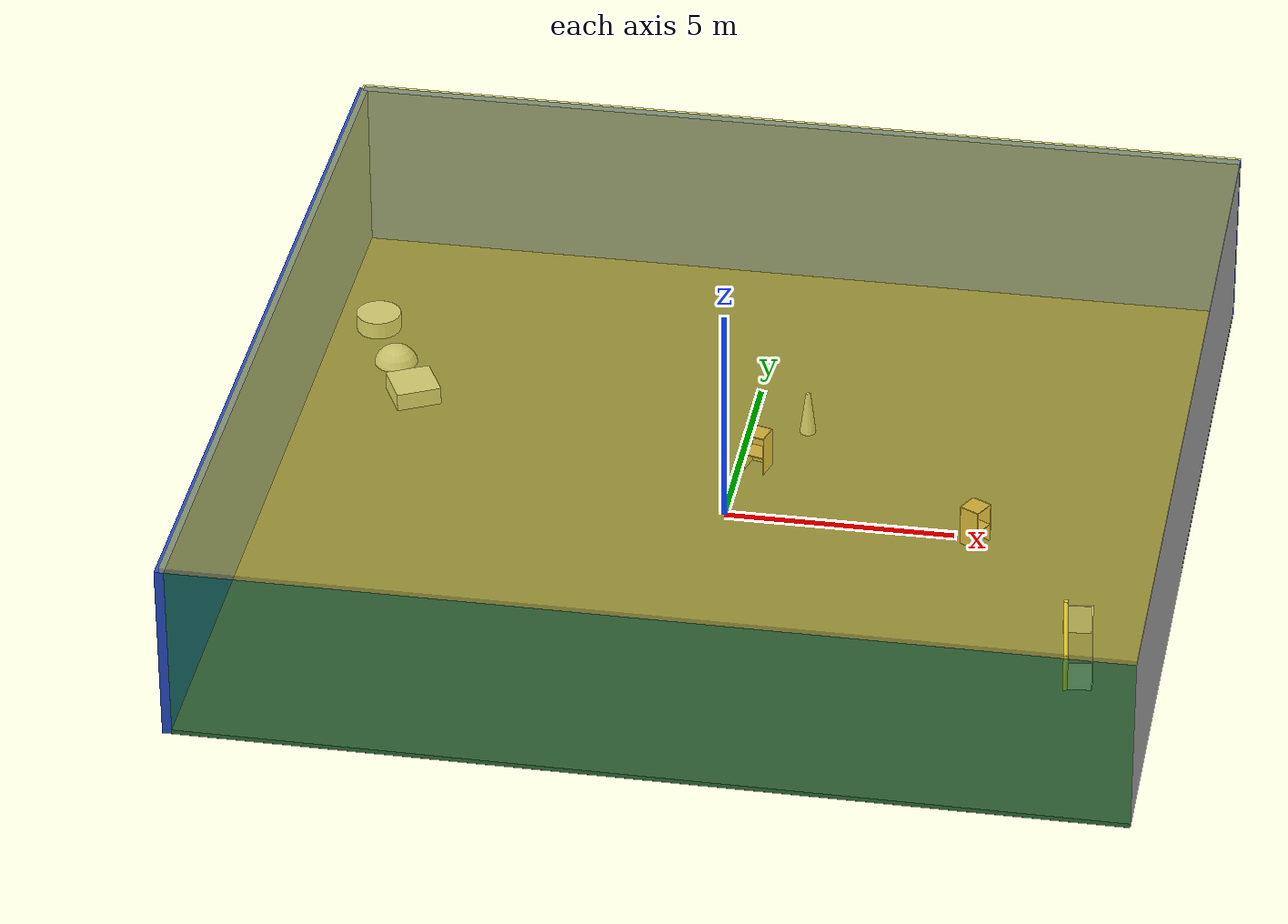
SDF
<sdf version="1.4">
 <world name="default">
  <physics type="ode">
   <max_step_size>0.001</max_step_size>
   <real_time_factor>1</real_time_factor>
   <real_time_update_rate>1000</real_time_update_rate>
   <gravity>0 0 -9.8</gravity>
  </physics>
  <scene><ambient>0.4 0.4 0.4 1</ambient><background>0.7 0.7 0.7 1</background><shadows>1</shadows></scene>
  <model name="Surrounding">
   <static>1</static>
   <link name="Ceiling">
    <collision name="Ceiling_Collision"><geometry><box><size>20 20 0.1</size></box></geometry></collision>
    <visual name="Ceiling_Visual">
     <geometry><box><size>20 20 0.1</size></box></geometry>
     <material>
      <script>
       <uri>file://media/materials/scripts/gazebo.material</uri>
       <name>Gazebo/YellowTransparent</name>
      </script>
     </material>
    </visual>
    <pose>0 0 4.05 0 0 0</pose>
   </link>
   <link name="Wall_South">
    <collision name="Wall_South_Collision">
     <geometry><box><size>20 0 4</size></box></geometry>
     <pose>0 0 2 0 -0 0</pose>
    </collision>
    <visual name="Wall_South_Visual">
     <pose>0 0 2 0 -0 0</pose>
     <geometry><box><size>20 0 4</size></box></geometry>
     <material>
      <script><uri>file://media/materials/scripts/gazebo.material</uri><name>Gazebo/GreenTransparent</name></script>
     </material>
    </visual>
    <velocity_decay><linear>0</linear><angular>0</angular></velocity_decay>
    <pose>0 -10 0 0 -0 0</pose>
   </link>
   <link name="Wall_East">
    <collision name="Wall_21_Collision">
     <geometry><box><size>20 0 4</size></box></geometry>
     <pose>0 0 2 0 -0 0</pose>
    </collision>
    <visual name="Wall_21_Visual">
     <pose>0 0 2 0 -0 0</pose>
     <geometry><box><size>20 0 4</size></box></geometry>
     <material>
      <script><uri>file://media/materials/scripts/gazebo.material</uri><name>Gazebo/CloudySky</name></script>
     </material>
    </visual>
    <velocity_decay><linear>0</linear><angular>0</angular></velocity_decay>
    <pose>10 0 0 0 -0 1.5708</pose>
   </link>
   <link name="Wall_North">
    <collision name="Wall_22_Collision">
     <geometry><box><size>20 0.2 4</size></box></geometry>
     <pose>0 0 2 0 -0 0</pose>
    </collision>
    <visual name="Wall_22_Visual">
     <pose>0 0 2 0 -0 0</pose>
     <geometry><box><size>20 0.2 4</size></box></geometry>
     <material>
      <script><uri>file://media/materials/scripts/gazebo.material</uri><name>Gazebo/Blue</name></script>
     </material>
    </visual>
    <velocity_decay><linear>0</linear><angular>0</angular></velocity_decay>
    <pose>0 10 0 0 -0 0</pose>
   </link>
   <link name="Wall_West">
    <collision name="Wall_23_Collision">
     <geometry><box><size>20 0.2 4</size></box></geometry>
     <pose>0 0 2 0 -0 0</pose>
    </collision>
    <visual name="Wall_23_Visual">
     <pose>0 0 2 0 -0 0</pose>
     <geometry><box><size>20 0.2 4</size></box></geometry>
     <material>
      <script><uri>file://media/materials/scripts/gazebo.material</uri><name>Gazebo/BlueLaser</name></script>
     </material>
    </visual>
    <velocity_decay><linear>0</linear><angular>0</angular></velocity_decay>
    <pose>-10 0 0 0 0 -1.5708</pose>
   </link>
   <link name="Ground_link">
    <collision name="collision">
     <pose>0 0 .05 0 -0 0</pose>
     <geometry><box><size>20 20 0.1</size></box></geometry>
    </collision>
    <visual name="visual">
     <pose>0 0 .05 0 -0 0</pose>
     <geometry><box><size>20 20 0.1</size></box></geometry>
     <material>
      <script><uri>file://media/materials/scripts/gazebo.material</uri><name>Gazebo/DarkGrey</name></script>
     </material>
    </visual>
   </link>
   <static>1</static>
  </model>
  <spherical_coordinates>
   <surface_model>EARTH_WGS84</surface_model>
   <latitude_deg>0</latitude_deg>
   <longitude_deg>0</longitude_deg>
   <elevation>0</elevation>
   <heading_deg>0</heading_deg>
  </spherical_coordinates>
  <light name="lightball_0" type="diffuse">
   <diffuse>0.8 0.8 0.8 1</diffuse>
   <specular>0.2 0.2 0.2 1</specular>
   <attenuation>
    <range>100</range>
    <constant>0.7</constant>
    <linear>0.01</linear>
    <quadratic>0.001</quadratic>
   </attenuation>
   <direction>-0.5 0.1 -0.9</direction>
   <pose>-6.51064426734 9.3761627326 1.30896414174 0 0 0</pose>
  </light>
  <light name="lightball_1" type="diffuse">
   <diffuse>0.8 0.8 0.8 1</diffuse>
   <specular>0.2 0.2 0.2 1</specular>
   <attenuation>
    <range>100</range>
    <constant>0.7</constant>
    <linear>0.01</linear>
    <quadratic>0.001</quadratic>
   </attenuation>
   <direction>-0.5 0.1 -0.9</direction>
   <pose>2.09924826335 -2.2232489941 1.76456132534 0 0 0</pose>
  </light>
  <light name="lightball_2" type="diffuse">
   <diffuse>0.8 0.8 0.8 1</diffuse>
   <specular>0.2 0.2 0.2 1</specular>
   <attenuation>
    <range>100</range>
    <constant>0.7</constant>
    <linear>0.01</linear>
    <quadratic>0.001</quadratic>
   </attenuation>
   <direction>-0.5 0.1 -0.9</direction>
   <pose>-7.28841832403 -0.826815533335 2.97032893786 0 0 0</pose>
  </light>
  <light name="lightball_3" type="diffuse">
   <diffuse>0.8 0.8 0.8 1</diffuse>
   <specular>0.2 0.2 0.2 1</specular>
   <attenuation>
    <range>100</range>
    <constant>0.7</constant>
    <linear>0.01</linear>
    <quadratic>0.001</quadratic>
   </attenuation>
   <direction>-0.5 0.1 -0.9</direction>
   <pose>7.41352092533 -6.94708466512 1.95609536042 0 0 0</pose>
  </light>
  <light name="lightball_4" type="diffuse">
   <diffuse>0.8 0.8 0.8 1</diffuse>
   <specular>0.2 0.2 0.2 1</specular>
   <attenuation>
    <range>100</range>
    <constant>0.7</constant>
    <linear>0.01</linear>
    <quadratic>0.001</quadratic>
   </attenuation>
   <direction>-0.5 0.1 -0.9</direction>
   <pose>-8.51131241645 -3.22946797812 1.5945311934 0 0 0</pose>
  </light>
  <light name="lightball_5" type="diffuse">
   <diffuse>0.8 0.8 0.8 1</diffuse>
   <specular>0.2 0.2 0.2 1</specular>
   <attenuation>
    <range>100</range>
    <constant>0.7</constant>
    <linear>0.01</linear>
    <quadratic>0.001</quadratic>
   </attenuation>
   <direction>-0.5 0.1 -0.9</direction>
   <pose>2.62668425773 8.2964421054 2.28328695214 0 0 0</pose>
  </light>
  <light name="lightball_6" type="diffuse">
   <diffuse>0.8 0.8 0.8 1</diffuse>
   <specular>0.2 0.2 0.2 1</specular>
   <attenuation>
    <range>100</range>
    <constant>0.7</constant>
    <linear>0.01</linear>
    <quadratic>0.001</quadratic>
   </attenuation>
   <direction>-0.5 0.1 -0.9</direction>
   <pose>-6.85969620407 -1.77655929607 3.36409005053 0 0 0</pose>
  </light>
  <include>
   <uri>model://textured_shapes</uri>
   <pose>-8.25573167317 4.76208407275 0 0 0 0.464612774692</pose>
  </include>
  <include><uri>model://cabinet</uri><pose>0.42616168302 1.80841545188 0 0 0 1.30730525894</pose></include>
  <include>
   <uri>model://construction_cone</uri>
   <pose>1.28031991086 3.41554435418 0 0 0 0.709374649211</pose>
  </include>
  <include><uri>model://cabinet</uri><pose>5.50263671541 -0.304172562253 0 0 0 2.64604903114</pose></include>
  <include>
   <uri>model://robocup_3Dsim_goal</uri>
   <pose>7.96996106119 -4.45377298041 0 0 0 0.119862616102</pose>
  </include>
 </world>
</sdf>

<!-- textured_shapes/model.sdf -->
<sdf version="1.6">
  <model name="textured_shapes">
    <pose>0 0 0.5 0 0 0</pose>
    <link name="box">
      <pose>0 -1.5 0 0 0 0</pose>
      <collision name="collision">
        <geometry>
          <box>
            <size>1 1 1</size>
          </box>
        </geometry>
      </collision>
      <visual name="visual">
        <geometry>
          <box>
            <size>1 1 1</size>
          </box>
        </geometry>
        <material>
          <script>
            <uri>model://../model_source/models/textured_shapes/materials/scripts</uri>
            <uri>model://../model_source/models/textured_shapes/materials/textures</uri>
            <name>TexturedShape/Squares</name>
          </script>
        </material>
      </visual>
    </link>
    <link name="sphere">
      <collision name="collision">
        <geometry>
          <sphere>
            <radius>0.5</radius>
          </sphere>
        </geometry>
      </collision>
      <visual name="visual">
        <geometry>
          <sphere>
            <radius>0.5</radius>
          </sphere>
        </geometry>
        <material>
          <script>
            <uri>model://../model_source/models/textured_shapes/materials/scripts</uri>
            <uri>model://../model_source/models/textured_shapes/materials/textures</uri>
            <name>TexturedShape/Squares</name>
          </script>
        </material>
      </visual>
    </link>
    <link name="cylinder">
      <pose>0 1.5 0 0 0 0</pose>
      <collision name="collision">
        <geometry>
          <cylinder>
            <radius>0.5</radius>
            <length>1</length>
          </cylinder>
        </geometry>
      </collision>
      <visual name="visual">
        <geometry>
          <cylinder>
            <radius>0.5</radius>
            <length>1</length>
          </cylinder>
        </geometry>
        <material>
          <script>
            <uri>model://../model_source/models/textured_shapes/materials/scripts</uri>
            <uri>model://../model_source/models/textured_shapes/materials/textures</uri>
            <name>TexturedShape/Squares</name>
          </script>
        </material>
      </visual>
    </link>
  </model>
</sdf>

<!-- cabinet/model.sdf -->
<sdf version="1.5">
  <model name="cabinet">
    <static>true</static>
    <link name="cabinet_bottom_plate">
      <inertial>
        <pose>0 0 -1 0 0 0</pose>
        <inertia>
          <ixx>2.050000</ixx>
          <ixy>0</ixy>
          <ixz>0</ixz>
          <iyy>2.050000</iyy>
          <iyz>0</iyz>
          <izz>2.050000</izz>
        </inertia>
        <mass>25.000000</mass>
      </inertial>
      <collision name="cabinet_bottom_plate_geom">
        <pose>0 0 0.010000 0 0 0</pose>
        <geometry>
          <box>
            <size>0.450000 0.450000 0.020000</size>
          </box>
        </geometry>
      </collision>
      <visual name="cabinet_bottom_plate_geom_visual">
        <pose>0 0 0.010000 0 0 0</pose>
        <geometry>
          <box>
            <size>0.450000 0.450000 0.020000</size>
          </box>
        </geometry>
        <material>
          <script>
            <uri>model://media/materials/scripts/gazebo.material</uri>
            <name>Gazebo/Wood</name>
          </script>
        </material>
      </visual>
      <collision name="cabinet_bottom_plate_geom_cabinet_back_plate">
        <pose>0.235000 0 0.510000 0 0 0</pose>
        <geometry>
          <box>
            <size>0.020000 0.450000 1.020000</size>
          </box>
        </geometry>
      </collision>
      <visual name="cabinet_bottom_plate_geom_cabinet_back_plate_visual">
        <pose>0.235000 0 0.510000 0 0 0</pose>
        <geometry>
          <box>
            <size>0.020000 0.450000 1.020000</size>
          </box>
        </geometry>
        <material>
          <script>
            <uri>model://media/materials/scripts/gazebo.material</uri>
            <name>Gazebo/Wood</name>
          </script>
        </material>
      </visual>
      <collision name="cabinet_bottom_plate_geom_cabinet_left_plate">
        <pose>0 0.235000 0.510000 0 0 0</pose>
        <geometry>
          <box>
            <size>0.450000 0.020000 1.020000</size>
          </box>
        </geometry>
      </collision>
      <visual name="cabinet_bottom_plate_geom_cabinet_left_plate_visual">
        <pose>0 0.235000 0.510000 0 0 0</pose>
        <geometry>
          <box>
            <size>0.450000 0.020000 1.020000</size>
          </box>
        </geometry>
        <material>
          <script>
            <uri>model://media/materials/scripts/gazebo.material</uri>
            <name>Gazebo/Wood</name>
          </script>
        </material>
      </visual>
      <collision name="cabinet_bottom_plate_geom_cabinet_middle_plate">
        <pose>0 0 0.510000 0 0 0</pose>
        <geometry>
          <box>
            <size>0.450000 0.450000 0.020000</size>
          </box>
        </geometry>
      </collision>
      <visual name="cabinet_bottom_plate_geom_cabinet_middle_plate_visual">
        <pose>0 0 0.510000 0 0 0</pose>
        <geometry>
          <box>
            <size>0.450000 0.450000 0.020000</size>
          </box>
        </geometry>
        <material>
          <script>
            <uri>model://media/materials/scripts/gazebo.material</uri>
            <name>Gazebo/Wood</name>
          </script>
        </material>
      </visual>
      <collision name="cabinet_bottom_plate_geom_cabinet_right_plate">
        <pose>0 -0.235000 0.510000 0 0 0</pose>
        <geometry>
          <box>
            <size>0.450000 0.020000 1.020000</size>
          </box>
        </geometry>
      </collision>
      <visual name="cabinet_bottom_plate_geom_cabinet_right_plate_visual">
        <pose>0 -0.235000 0.510000 0 0 0</pose>
        <geometry>
          <box>
            <size>0.450000 0.020000 1.020000</size>
          </box>
        </geometry>
        <material>
          <script>
            <uri>model://media/materials/scripts/gazebo.material</uri>
            <name>Gazebo/Wood</name>
          </script>
        </material>
      </visual>
      <collision name="cabinet_bottom_plate_geom_cabinet_top_plate">
        <pose>0 0 1.010000 0 0 0</pose>
        <geometry>
          <box>
            <size>0.450000 0.450000 0.020000</size>
          </box>
        </geometry>
      </collision>
      <visual name="cabinet_bottom_plate_geom_cabinet_top_plate_visual">
        <pose>0 0 1.010000 0 0 0</pose>
        <geometry>
          <box>
            <size>0.450000 0.450000 0.020000</size>
          </box>
        </geometry>
        <material>
          <script>
            <uri>model://media/materials/scripts/gazebo.material</uri>
            <name>Gazebo/Wood</name>
          </script>
        </material>
      </visual>
    </link>
  </model>
</sdf>

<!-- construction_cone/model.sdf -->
<sdf version="1.5">
  <model name="Construction Cone">
    <link name="link">
      <collision name="collision">
        <geometry>
          <mesh>
            <scale>10 10 10</scale>
            <uri>file://isr-testbed/construction_cone/meshes/construction_cone.dae</uri>
          </mesh>
        </geometry>
      </collision>
      <visual name="visual">
        <geometry>
          <mesh>
            <scale>10 10 10</scale>
            <uri>file://isr-testbed/construction_cone/meshes/construction_cone.dae</uri>
          </mesh>
        </geometry>
      </visual>
    </link>
  </model>
</sdf>

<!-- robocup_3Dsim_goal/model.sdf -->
<sdf version="1.5">
  <model name="robocup_3d_goal">
    <static>true</static>
    <link name="left_post">
      <pose>0 1.05 0.45 0 0 0</pose>
      <collision name="collision">
        <geometry>
          <cylinder>
            <radius>0.05</radius>
            <length>0.9</length>
          </cylinder>
        </geometry>
      </collision>
      <visual name="visual">
        <geometry>
          <cylinder>
            <radius>0.05</radius>
            <length>0.9</length>
          </cylinder>
        </geometry>
        <material>
          <script>
            <uri>file://media/materials/scripts/gazebo.material</uri>
            <name>Gazebo/ZincYellow</name>
          </script>
        </material>
      </visual>
    </link>
    <link name="left_support_horiz_lower">
      <pose>0.30 1.05 0.01 0 0 0</pose>
      <collision name="collision">
        <geometry>
          <box>
            <size>0.50 0.02 0.02</size>
          </box>
        </geometry>
      </collision>
      <visual name="visual">
        <geometry>
          <box>
            <size>0.50 0.02 0.02</size>
          </box>
        </geometry>
        <material>
          <script>
            <uri>file://media/materials/scripts/gazebo.material</uri>
            <name>Gazebo/White</name>
          </script>
        </material>
      </visual>
    </link>
    <link name="left_support_horiz_upper">
      <pose>0.30 1.05 0.79 0 0 0</pose>
      <collision name="collision">
        <geometry>
          <box>
            <size>0.50 0.02 0.02</size>
          </box>
        </geometry>
      </collision>
      <visual name="visual">
        <geometry>
          <box>
            <size>0.50 0.02 0.02</size>
          </box>
        </geometry>
        <material>
          <script>
            <uri>file://media/materials/scripts/gazebo.material</uri>
            <name>Gazebo/White</name>
          </script>
        </material>
      </visual>
    </link>
    <link name="left_support_vertical">
      <pose>0.56 1.05 0.4 0 1.5708 0</pose>
      <collision name="collision">
        <geometry>
          <box>
            <size>0.80 0.02 0.02</size>
          </box>
        </geometry>
      </collision>
      <visual name="visual">
        <geometry>
          <box>
            <size>0.80 0.02 0.02</size>
          </box>
        </geometry>
        <material>
          <script>
            <uri>file://media/materials/scripts/gazebo.material</uri>
            <name>Gazebo/White</name>
          </script>
        </material>
      </visual>
    </link>
    <link name="right_support_horiz_lower">
      <pose>0.30 -1.05 0.01 0 0 0</pose>
      <collision name="collision">
        <geometry>
          <box>
            <size>0.50 0.02 0.02</size>
          </box>
        </geometry>
      </collision>
      <visual name="visual">
        <geometry>
          <box>
            <size>0.50 0.02 0.02</size>
          </box>
        </geometry>
        <material>
          <script>
            <uri>file://media/materials/scripts/gazebo.material</uri>
            <name>Gazebo/White</name>
          </script>
        </material>
      </visual>
    </link>
    <link name="right_support_horiz_upper">
      <pose>0.30 -1.05 0.79 0 0 0</pose>
      <collision name="collision">
        <geometry>
          <box>
            <size>0.50 0.02 0.02</size>
          </box>
        </geometry>
      </collision>
      <visual name="visual">
        <geometry>
          <box>
            <size>0.50 0.02 0.02</size>
          </box>
        </geometry>
        <material>
          <script>
            <uri>file://media/materials/scripts/gazebo.material</uri>
            <name>Gazebo/White</name>
          </script>
        </material>
      </visual>
    </link>
    <link name="right_support_vertical">
      <pose>0.56 -1.05 0.4 0 1.5708 0</pose>
      <collision name="collision">
        <geometry>
          <box>
            <size>0.80 0.02 0.02</size>
          </box>
        </geometry>
      </collision>
      <visual name="visual">
        <geometry>
          <box>
            <size>0.80 0.02 0.02</size>
          </box>
        </geometry>
        <material>
          <script>
            <uri>file://media/materials/scripts/gazebo.material</uri>
            <name>Gazebo/White</name>
          </script>
        </material>
      </visual>
    </link>
    <link name="center_support_horiz_lower">
      <pose>0.56 0 0.01 0 1.5708 0</pose>
      <collision name="collision">
        <geometry>
          <box>
            <size>0.02 2.08 0.02</size>
          </box>
        </geometry>
      </collision>
      <visual name="visual">
        <geometry>
          <box>
            <size>0.02 2.08 0.02</size>
          </box>
        </geometry>
        <material>
          <script>
            <uri>file://media/materials/scripts/gazebo.material</uri>
            <name>Gazebo/White</name>
          </script>
        </material>
      </visual>
    </link>
    <link name="center_support_horiz_upper">
      <pose>0.56 0 0.79 0 1.5708 0</pose>
      <collision name="collision">
        <geometry>
          <box>
            <size>0.02 2.08 0.02</size>
          </box>
        </geometry>
      </collision>
      <visual name="visual">
        <geometry>
          <box>
            <size>0.02 2.08 0.02</size>
          </box>
        </geometry>
        <material>
          <script>
            <uri>file://media/materials/scripts/gazebo.material</uri>
            <name>Gazebo/White</name>
          </script>
        </material>
      </visual>
    </link>
    <link name="right_post">
      <pose>0 -1.05 0.45 0 0 0</pose>
      <collision name="collision">
        <geometry>
          <cylinder>
            <radius>0.05</radius>
            <length>0.9</length>
          </cylinder>
        </geometry>
      </collision>
      <visual name="visual">
        <geometry>
          <cylinder>
            <radius>0.05</radius>
            <length>0.9</length>
          </cylinder>
        </geometry>
        <material>
          <script>
            <uri>file://media/materials/scripts/gazebo.material</uri>
            <name>Gazebo/ZincYellow</name>
          </script>
        </material>
      </visual>
    </link>
    <link name="crossbar">
      <pose>0 0 0.85 1.57 1.57 0</pose>
      <collision name="collision">
        <geometry>
          <cylinder>
            <radius>0.05</radius>
            <length>2.0</length>
          </cylinder>
        </geometry>
      </collision>
      <visual name="visual">
        <geometry>
          <cylinder>
            <radius>0.05</radius>
            <length>2.0</length>
          </cylinder>
        </geometry>
        <material>
          <script>
            <uri>file://media/materials/scripts/gazebo.material</uri>
            <name>Gazebo/ZincYellow</name>
          </script>
        </material>
      </visual>
    </link>
    <link name="center_net">
      <pose>0.56 0 0.40 0 0 0</pose>
      <collision name="collision">
        <geometry>
          <box>
            <size>0.01 2.1 0.80</size>
          </box>
        </geometry>
      </collision>
      <visual name="visual">
        <geometry>
          <box>
            <size>0.01 2.1 0.80</size>
          </box>
        </geometry>
        <material>
          <script>
            <uri>model://../model_source/models/robocup09_spl_field/materials/scripts/</uri>
            <uri>model://../model_source/models/robocup09_spl_field/materials/textures/</uri>
            <name>RoboCup/Net</name>
          </script>
        </material>
      </visual>
    </link>
    <link name="left_net">
      <pose>0.30 1.05 0.40 0 0 0</pose>
      <collision name="collision">
        <geometry>
          <box>
            <size>0.50 0.01 0.76</size>
          </box>
        </geometry>
      </collision>
      <visual name="visual">
        <geometry>
          <box>
            <size>0.50 0.01 0.76</size>
          </box>
        </geometry>
        <material>
          <script>
            <uri>model://../model_source/models/robocup09_spl_field/materials/scripts/</uri>
            <uri>model://../model_source/models/robocup09_spl_field/materials/textures/</uri>
            <name>RoboCup/Net</name>
          </script>
        </material>
      </visual>
    </link>
    <link name="right_net">
      <pose>0.30 -1.05 0.40 0 0 0</pose>
      <collision name="collision">
        <geometry>
          <box>
            <size>0.50 0.01 0.76</size>
          </box>
        </geometry>
      </collision>
      <visual name="visual">
        <geometry>
          <box>
            <size>0.50 0.01 0.76</size>
          </box>
        </geometry>
        <material>
          <script>
            <uri>model://../model_source/models/robocup09_spl_field/materials/scripts/</uri>
            <uri>model://../model_source/models/robocup09_spl_field/materials/textures/</uri>
            <name>RoboCup/Net</name>
          </script>
        </material>
      </visual>
    </link>
  </model>
</sdf>
